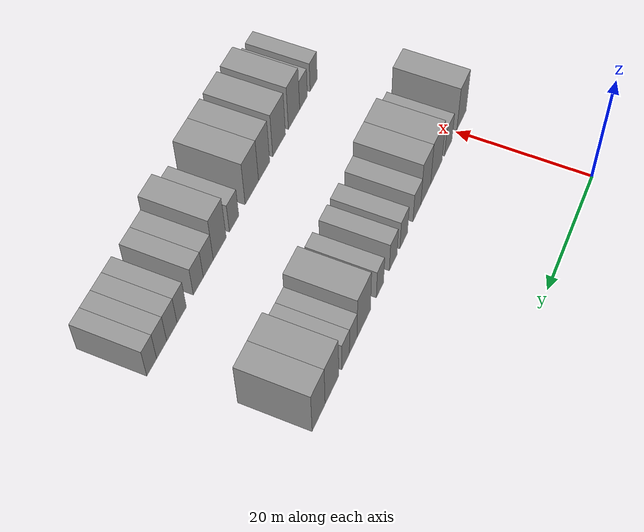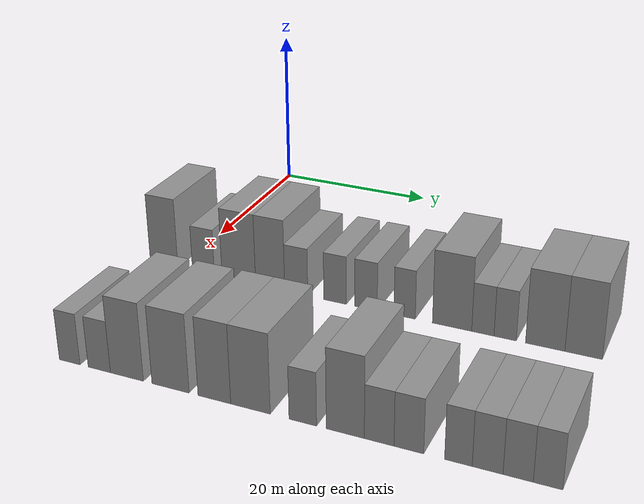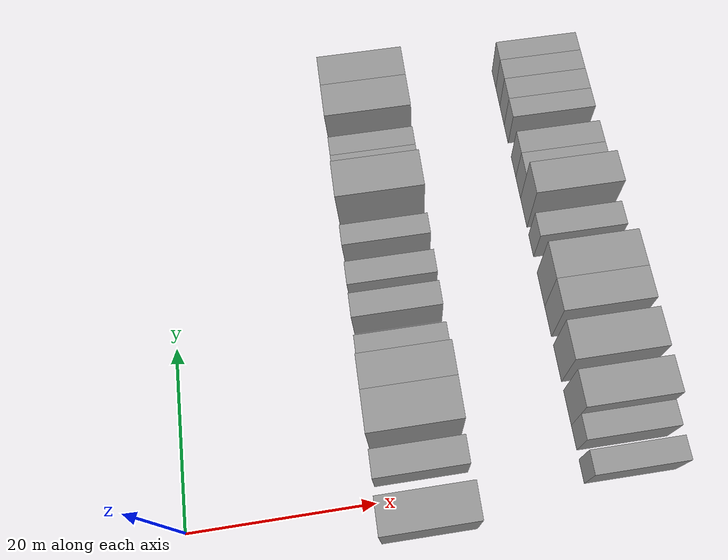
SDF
<sdf version="1.6">
 <world name="default">
  <model name="building_54">
   <static>1</static>
   <pose>25.0000 -2.1861 0 0.000000 0.000000 0.000000</pose>
   <link name="link">
    <pose>0 0 4.50 0 0 0</pose>
    <collision name="collision"><geometry><box><size>10.0000 3.8187 9.0000</size></box></geometry></collision>
    <visual name="visual">
     <cast_shadows>0</cast_shadows>
     <geometry><box><size>10.0000 3.8187 9.0000</size></box></geometry>
     <material>
      <script>
       <uri>model://grey_wall/materials/scripts</uri>
       <uri>model://grey_wall/materials/textures</uri>
       <name>vrc/grey_wall</name>
      </script>
     </material>
    </visual>
   </link>
  </model>
  <model name="building_55">
   <static>1</static>
   <pose>25.0000 3.2048 0 0.000000 0.000000 0.000000</pose>
   <link name="link">
    <pose>0 0 3.00 0 0 0</pose>
    <collision name="collision"><geometry><box><size>10.0000 2.9631 6.0000</size></box></geometry></collision>
    <visual name="visual">
     <cast_shadows>0</cast_shadows>
     <geometry><box><size>10.0000 2.9631 6.0000</size></box></geometry>
     <material>
      <script>
       <uri>model://grey_wall/materials/scripts</uri>
       <uri>model://grey_wall/materials/textures</uri>
       <name>vrc/grey_wall</name>
      </script>
     </material>
    </visual>
   </link>
  </model>
  <model name="building_56">
   <static>1</static>
   <pose>25.0000 7.9016 0 0.000000 0.000000 0.000000</pose>
   <link name="link">
    <pose>0 0 4.50 0 0 0</pose>
    <collision name="collision"><geometry><box><size>10.0000 4.4305 9.0000</size></box></geometry></collision>
    <visual name="visual">
     <cast_shadows>0</cast_shadows>
     <geometry><box><size>10.0000 4.4305 9.0000</size></box></geometry>
     <material>
      <script>
       <uri>model://grey_wall/materials/scripts</uri>
       <uri>model://grey_wall/materials/textures</uri>
       <name>vrc/grey_wall</name>
      </script>
     </material>
    </visual>
   </link>
  </model>
  <model name="building_57">
   <static>1</static>
   <pose>25.0000 11.9886 0 0.000000 0.000000 0.000000</pose>
   <link name="link">
    <pose>0 0 4.50 0 0 0</pose>
    <collision name="collision"><geometry><box><size>10.0000 3.7435 9.0000</size></box></geometry></collision>
    <visual name="visual">
     <cast_shadows>0</cast_shadows>
     <geometry><box><size>10.0000 3.7435 9.0000</size></box></geometry>
     <material>
      <script>
       <uri>model://grey_wall/materials/scripts</uri>
       <uri>model://grey_wall/materials/textures</uri>
       <name>vrc/grey_wall</name>
      </script>
     </material>
    </visual>
   </link>
  </model>
  <model name="building_58">
   <static>1</static>
   <pose>25.0000 15.3218 0 0.000000 0.000000 0.000000</pose>
   <link name="link">
    <pose>0 0 3.00 0 0 0</pose>
    <collision name="collision"><geometry><box><size>10.0000 2.9228 6.0000</size></box></geometry></collision>
    <visual name="visual">
     <cast_shadows>0</cast_shadows>
     <geometry><box><size>10.0000 2.9228 6.0000</size></box></geometry>
     <material>
      <script>
       <uri>model://grey_wall/materials/scripts</uri>
       <uri>model://grey_wall/materials/textures</uri>
       <name>vrc/grey_wall</name>
      </script>
     </material>
    </visual>
   </link>
  </model>
  <model name="building_59">
   <static>1</static>
   <pose>25.0000 20.1744 0 0.000000 0.000000 0.000000</pose>
   <link name="link">
    <pose>0 0 3.00 0 0 0</pose>
    <collision name="collision"><geometry><box><size>10.0000 2.7824 6.0000</size></box></geometry></collision>
    <visual name="visual">
     <cast_shadows>0</cast_shadows>
     <geometry><box><size>10.0000 2.7824 6.0000</size></box></geometry>
     <material>
      <script>
       <uri>model://grey_wall/materials/scripts</uri>
       <uri>model://grey_wall/materials/textures</uri>
       <name>vrc/grey_wall</name>
      </script>
     </material>
    </visual>
   </link>
  </model>
  <model name="building_60">
   <static>1</static>
   <pose>25.0000 23.9321 0 0.000000 0.000000 0.000000</pose>
   <link name="link">
    <pose>0 0 3.00 0 0 0</pose>
    <collision name="collision"><geometry><box><size>10.0000 2.7331 6.0000</size></box></geometry></collision>
    <visual name="visual">
     <cast_shadows>0</cast_shadows>
     <geometry><box><size>10.0000 2.7331 6.0000</size></box></geometry>
     <material>
      <script>
       <uri>model://grey_wall/materials/scripts</uri>
       <uri>model://grey_wall/materials/textures</uri>
       <name>vrc/grey_wall</name>
      </script>
     </material>
    </visual>
   </link>
  </model>
  <model name="building_61">
   <static>1</static>
   <pose>25.0000 28.5490 0 0.000000 0.000000 0.000000</pose>
   <link name="link">
    <pose>0 0 3.00 0 0 0</pose>
    <collision name="collision"><geometry><box><size>10.0000 2.5007 6.0000</size></box></geometry></collision>
    <visual name="visual">
     <cast_shadows>0</cast_shadows>
     <geometry><box><size>10.0000 2.5007 6.0000</size></box></geometry>
     <material>
      <script>
       <uri>model://grey_wall/materials/scripts</uri>
       <uri>model://grey_wall/materials/textures</uri>
       <name>vrc/grey_wall</name>
      </script>
     </material>
    </visual>
   </link>
  </model>
  <model name="building_62">
   <static>1</static>
   <pose>25.0000 34.0377 0 0.000000 0.000000 0.000000</pose>
   <link name="link">
    <pose>0 0 4.50 0 0 0</pose>
    <collision name="collision"><geometry><box><size>10.0000 4.4766 9.0000</size></box></geometry></collision>
    <visual name="visual">
     <cast_shadows>0</cast_shadows>
     <geometry><box><size>10.0000 4.4766 9.0000</size></box></geometry>
     <material>
      <script>
       <uri>model://grey_wall/materials/scripts</uri>
       <uri>model://grey_wall/materials/textures</uri>
       <name>vrc/grey_wall</name>
      </script>
     </material>
    </visual>
   </link>
  </model>
  <model name="building_63">
   <static>1</static>
   <pose>25.0000 37.5233 0 0.000000 0.000000 0.000000</pose>
   <link name="link">
    <pose>0 0 3.00 0 0 0</pose>
    <collision name="collision"><geometry><box><size>10.0000 2.4945 6.0000</size></box></geometry></collision>
    <visual name="visual">
     <cast_shadows>0</cast_shadows>
     <geometry><box><size>10.0000 2.4945 6.0000</size></box></geometry>
     <material>
      <script>
       <uri>model://grey_wall/materials/scripts</uri>
       <uri>model://grey_wall/materials/textures</uri>
       <name>vrc/grey_wall</name>
      </script>
     </material>
    </visual>
   </link>
  </model>
  <model name="building_64">
   <static>1</static>
   <pose>25.0000 39.9988 0 0.000000 0.000000 0.000000</pose>
   <link name="link">
    <pose>0 0 3.00 0 0 0</pose>
    <collision name="collision"><geometry><box><size>10.0000 2.4566 6.0000</size></box></geometry></collision>
    <visual name="visual">
     <cast_shadows>0</cast_shadows>
     <geometry><box><size>10.0000 2.4566 6.0000</size></box></geometry>
     <material>
      <script>
       <uri>model://grey_wall/materials/scripts</uri>
       <uri>model://grey_wall/materials/textures</uri>
       <name>vrc/grey_wall</name>
      </script>
     </material>
    </visual>
   </link>
  </model>
  <model name="building_65">
   <static>1</static>
   <pose>25.0000 44.3434 0 0.000000 0.000000 0.000000</pose>
   <link name="link">
    <pose>0 0 4.50 0 0 0</pose>
    <collision name="collision"><geometry><box><size>10.0000 4.2325 9.0000</size></box></geometry></collision>
    <visual name="visual">
     <cast_shadows>0</cast_shadows>
     <geometry><box><size>10.0000 4.2325 9.0000</size></box></geometry>
     <material>
      <script>
       <uri>model://grey_wall/materials/scripts</uri>
       <uri>model://grey_wall/materials/textures</uri>
       <name>vrc/grey_wall</name>
      </script>
     </material>
    </visual>
   </link>
  </model>
  <model name="building_66">
   <static>1</static>
   <pose>25.0000 48.4290 0 0.000000 0.000000 0.000000</pose>
   <link name="link">
    <pose>0 0 4.50 0 0 0</pose>
    <collision name="collision"><geometry><box><size>10.0000 3.9387 9.0000</size></box></geometry></collision>
    <visual name="visual">
     <cast_shadows>0</cast_shadows>
     <geometry><box><size>10.0000 3.9387 9.0000</size></box></geometry>
     <material>
      <script>
       <uri>model://grey_wall/materials/scripts</uri>
       <uri>model://grey_wall/materials/textures</uri>
       <name>vrc/grey_wall</name>
      </script>
     </material>
    </visual>
   </link>
  </model>
  <model name="building_160">
   <static>1</static>
   <pose>47.0000 -0.0286 0 0.000000 0.000000 0.000000</pose>
   <link name="link">
    <pose>0 0 3.00 0 0 0</pose>
    <collision name="collision"><geometry><box><size>10.0000 2.5433 6.0000</size></box></geometry></collision>
    <visual name="visual">
     <cast_shadows>0</cast_shadows>
     <geometry><box><size>10.0000 2.5433 6.0000</size></box></geometry>
     <material>
      <script>
       <uri>model://grey_wall/materials/scripts</uri>
       <uri>model://grey_wall/materials/textures</uri>
       <name>vrc/grey_wall</name>
      </script>
     </material>
    </visual>
   </link>
  </model>
  <model name="building_161">
   <static>1</static>
   <pose>47.0000 3.5879 0 0.000000 0.000000 0.000000</pose>
   <link name="link">
    <pose>0 0 3.00 0 0 0</pose>
    <collision name="collision"><geometry><box><size>10.0000 2.6896 6.0000</size></box></geometry></collision>
    <visual name="visual">
     <cast_shadows>0</cast_shadows>
     <geometry><box><size>10.0000 2.6896 6.0000</size></box></geometry>
     <material>
      <script>
       <uri>model://grey_wall/materials/scripts</uri>
       <uri>model://grey_wall/materials/textures</uri>
       <name>vrc/grey_wall</name>
      </script>
     </material>
    </visual>
   </link>
  </model>
  <model name="building_162">
   <static>1</static>
   <pose>47.0000 6.8904 0 0.000000 0.000000 0.000000</pose>
   <link name="link">
    <pose>0 0 4.50 0 0 0</pose>
    <collision name="collision"><geometry><box><size>10.0000 3.9154 9.0000</size></box></geometry></collision>
    <visual name="visual">
     <cast_shadows>0</cast_shadows>
     <geometry><box><size>10.0000 3.9154 9.0000</size></box></geometry>
     <material>
      <script>
       <uri>model://grey_wall/materials/scripts</uri>
       <uri>model://grey_wall/materials/textures</uri>
       <name>vrc/grey_wall</name>
      </script>
     </material>
    </visual>
   </link>
  </model>
  <model name="building_163">
   <static>1</static>
   <pose>47.0000 11.9839 0 0.000000 0.000000 0.000000</pose>
   <link name="link">
    <pose>0 0 4.50 0 0 0</pose>
    <collision name="collision"><geometry><box><size>10.0000 4.2717 9.0000</size></box></geometry></collision>
    <visual name="visual">
     <cast_shadows>0</cast_shadows>
     <geometry><box><size>10.0000 4.2717 9.0000</size></box></geometry>
     <material>
      <script>
       <uri>model://grey_wall/materials/scripts</uri>
       <uri>model://grey_wall/materials/textures</uri>
       <name>vrc/grey_wall</name>
      </script>
     </material>
    </visual>
   </link>
  </model>
  <model name="building_164">
   <static>1</static>
   <pose>47.0000 16.9417 0 0.000000 0.000000 0.000000</pose>
   <link name="link">
    <pose>0 0 4.50 0 0 0</pose>
    <collision name="collision"><geometry><box><size>10.0000 3.6439 9.0000</size></box></geometry></collision>
    <visual name="visual">
     <cast_shadows>0</cast_shadows>
     <geometry><box><size>10.0000 3.6439 9.0000</size></box></geometry>
     <material>
      <script>
       <uri>model://grey_wall/materials/scripts</uri>
       <uri>model://grey_wall/materials/textures</uri>
       <name>vrc/grey_wall</name>
      </script>
     </material>
    </visual>
   </link>
  </model>
  <model name="building_165">
   <static>1</static>
   <pose>47.0000 20.9096 0 0.000000 0.000000 0.000000</pose>
   <link name="link">
    <pose>0 0 4.50 0 0 0</pose>
    <collision name="collision"><geometry><box><size>10.0000 4.2919 9.0000</size></box></geometry></collision>
    <visual name="visual">
     <cast_shadows>0</cast_shadows>
     <geometry><box><size>10.0000 4.2919 9.0000</size></box></geometry>
     <material>
      <script>
       <uri>model://grey_wall/materials/scripts</uri>
       <uri>model://grey_wall/materials/textures</uri>
       <name>vrc/grey_wall</name>
      </script>
     </material>
    </visual>
   </link>
  </model>
  <model name="building_166">
   <static>1</static>
   <pose>47.0000 26.4966 0 0.000000 0.000000 0.000000</pose>
   <link name="link">
    <pose>0 0 3.00 0 0 0</pose>
    <collision name="collision"><geometry><box><size>10.0000 2.8820 6.0000</size></box></geometry></collision>
    <visual name="visual">
     <cast_shadows>0</cast_shadows>
     <geometry><box><size>10.0000 2.8820 6.0000</size></box></geometry>
     <material>
      <script>
       <uri>model://grey_wall/materials/scripts</uri>
       <uri>model://grey_wall/materials/textures</uri>
       <name>vrc/grey_wall</name>
      </script>
     </material>
    </visual>
   </link>
  </model>
  <model name="building_167">
   <static>1</static>
   <pose>47.0000 30.8747 0 0.000000 0.000000 0.000000</pose>
   <link name="link">
    <pose>0 0 4.50 0 0 0</pose>
    <collision name="collision"><geometry><box><size>10.0000 3.8742 9.0000</size></box></geometry></collision>
    <visual name="visual">
     <cast_shadows>0</cast_shadows>
     <geometry><box><size>10.0000 3.8742 9.0000</size></box></geometry>
     <material>
      <script>
       <uri>model://grey_wall/materials/scripts</uri>
       <uri>model://grey_wall/materials/textures</uri>
       <name>vrc/grey_wall</name>
      </script>
     </material>
    </visual>
   </link>
  </model>
  <model name="building_168">
   <static>1</static>
   <pose>47.0000 34.2879 0 0.000000 0.000000 0.000000</pose>
   <link name="link">
    <pose>0 0 3.00 0 0 0</pose>
    <collision name="collision"><geometry><box><size>10.0000 2.9522 6.0000</size></box></geometry></collision>
    <visual name="visual">
     <cast_shadows>0</cast_shadows>
     <geometry><box><size>10.0000 2.9522 6.0000</size></box></geometry>
     <material>
      <script>
       <uri>model://grey_wall/materials/scripts</uri>
       <uri>model://grey_wall/materials/textures</uri>
       <name>vrc/grey_wall</name>
      </script>
     </material>
    </visual>
   </link>
  </model>
  <model name="building_169">
   <static>1</static>
   <pose>47.0000 37.2127 0 0.000000 0.000000 0.000000</pose>
   <link name="link">
    <pose>0 0 3.00 0 0 0</pose>
    <collision name="collision"><geometry><box><size>10.0000 2.8974 6.0000</size></box></geometry></collision>
    <visual name="visual">
     <cast_shadows>0</cast_shadows>
     <geometry><box><size>10.0000 2.8974 6.0000</size></box></geometry>
     <material>
      <script>
       <uri>model://grey_wall/materials/scripts</uri>
       <uri>model://grey_wall/materials/textures</uri>
       <name>vrc/grey_wall</name>
      </script>
     </material>
    </visual>
   </link>
  </model>
  <model name="building_170">
   <static>1</static>
   <pose>47.0000 41.9645 0 0.000000 0.000000 0.000000</pose>
   <link name="link">
    <pose>0 0 3.00 0 0 0</pose>
    <collision name="collision"><geometry><box><size>10.0000 2.6062 6.0000</size></box></geometry></collision>
    <visual name="visual">
     <cast_shadows>0</cast_shadows>
     <geometry><box><size>10.0000 2.6062 6.0000</size></box></geometry>
     <material>
      <script>
       <uri>model://grey_wall/materials/scripts</uri>
       <uri>model://grey_wall/materials/textures</uri>
       <name>vrc/grey_wall</name>
      </script>
     </material>
    </visual>
   </link>
  </model>
  <model name="building_171">
   <static>1</static>
   <pose>47.0000 44.6950 0 0.000000 0.000000 0.000000</pose>
   <link name="link">
    <pose>0 0 3.00 0 0 0</pose>
    <collision name="collision"><geometry><box><size>10.0000 2.8548 6.0000</size></box></geometry></collision>
    <visual name="visual">
     <cast_shadows>0</cast_shadows>
     <geometry><box><size>10.0000 2.8548 6.0000</size></box></geometry>
     <material>
      <script>
       <uri>model://grey_wall/materials/scripts</uri>
       <uri>model://grey_wall/materials/textures</uri>
       <name>vrc/grey_wall</name>
      </script>
     </material>
    </visual>
   </link>
  </model>
  <model name="building_172">
   <static>1</static>
   <pose>47.0000 47.4953 0 0.000000 0.000000 0.000000</pose>
   <link name="link">
    <pose>0 0 3.00 0 0 0</pose>
    <collision name="collision"><geometry><box><size>10.0000 2.7457 6.0000</size></box></geometry></collision>
    <visual name="visual">
     <cast_shadows>0</cast_shadows>
     <geometry><box><size>10.0000 2.7457 6.0000</size></box></geometry>
     <material>
      <script>
       <uri>model://grey_wall/materials/scripts</uri>
       <uri>model://grey_wall/materials/textures</uri>
       <name>vrc/grey_wall</name>
      </script>
     </material>
    </visual>
   </link>
  </model>
  <model name="building_173">
   <static>1</static>
   <pose>47.0000 50.1887 0 0.000000 0.000000 0.000000</pose>
   <link name="link">
    <pose>0 0 3.00 0 0 0</pose>
    <collision name="collision"><geometry><box><size>10.0000 2.6412 6.0000</size></box></geometry></collision>
    <visual name="visual">
     <cast_shadows>0</cast_shadows>
     <geometry><box><size>10.0000 2.6412 6.0000</size></box></geometry>
     <material>
      <script>
       <uri>model://grey_wall/materials/scripts</uri>
       <uri>model://grey_wall/materials/textures</uri>
       <name>vrc/grey_wall</name>
      </script>
     </material>
    </visual>
   </link>
  </model>
 </world>
</sdf>
